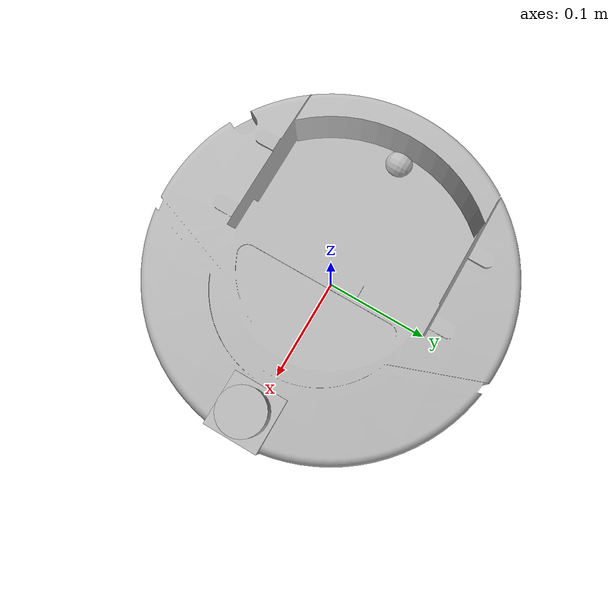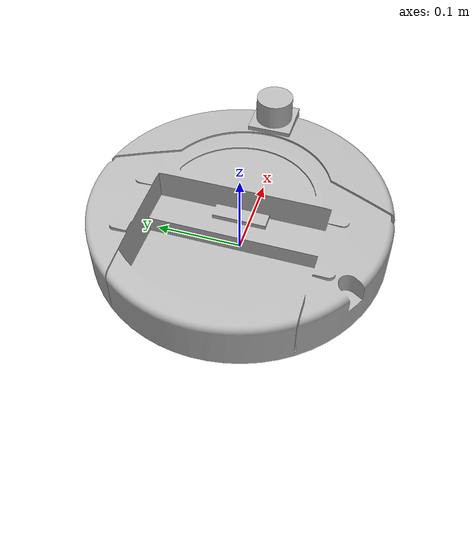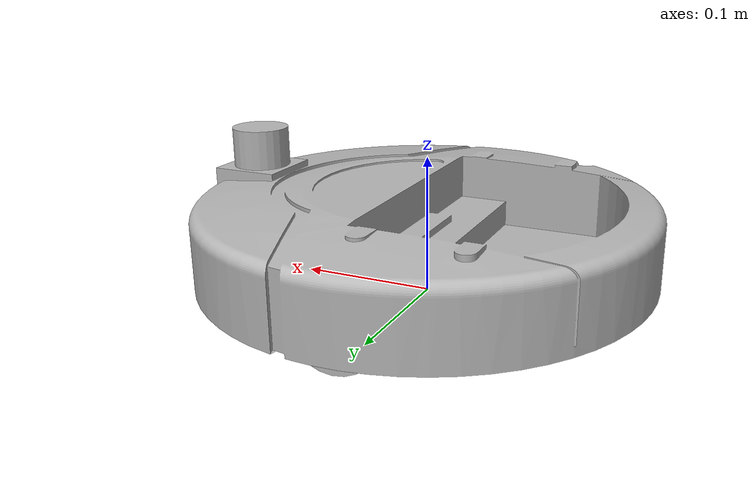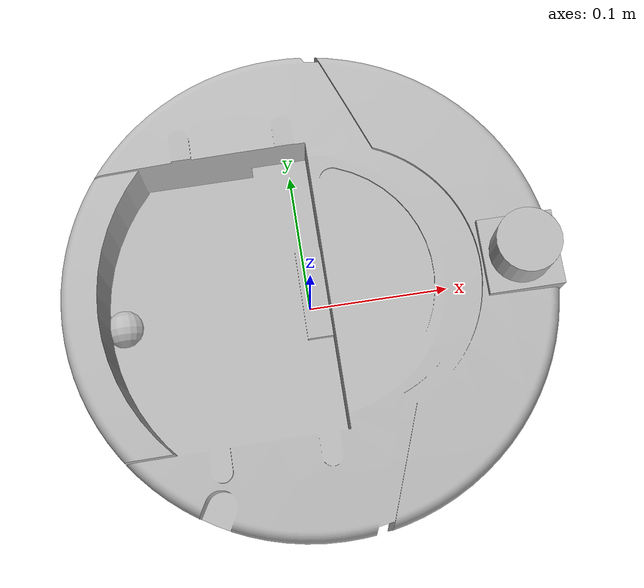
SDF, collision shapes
<?xml version="1.0" ?>
<sdf version="1.5">
  <model name="roombaROS">
    <link name="base">
      <inertial>
        <pose>0.001453 -0.000453 0.029787 0 0 0</pose>
        <inertia>
          <ixx>0.058640</ixx>
          <ixy>0.000124</ixy>
          <ixz>0.000615</ixz>
          <iyy>0.058786</iyy>
          <iyz>0.000014</iyz>
          <izz>1.532440</izz>
       </inertia>
        <mass>2.234000</mass>
     </inertial>
      <collision name="base_collision">
        <pose>0 0 0.047800 0 0 0</pose>
        <geometry>
          <mesh>
            <uri>model://roombaROS/meshes/create_body.dae</uri>
         </mesh>
       </geometry>
     </collision>
      <visual name="base_visual">
        <pose>0 0 0.047800 0 0 0</pose>
        <geometry>
          <mesh>
            <uri>model://roombaROS/meshes/create_body.dae</uri>
         </mesh>
       </geometry>
     </visual>
      <collision name="front_wheel_collision">
        <pose>0.130000 0 0.017000 0 1.570700 1.570700</pose>
        <geometry>
          <sphere>
            <radius>0.018000</radius>
         </sphere>
       </geometry>
        <surface>
          <friction>
            <ode>
              <mu>0</mu>
              <mu2>0</mu2>
              <fdir1>0 0 0</fdir1>
              <slip1>0</slip1>
              <slip2>0</slip2>
           </ode>
         </friction>
       </surface>
     </collision>
      <visual name="front_wheel_visual">
        <pose>0.130000 0 0.017000 0 1.570700 1.570700</pose>
        <geometry>
          <sphere>
            <radius>0.009000</radius>
         </sphere>
       </geometry>
     </visual>
      <collision name="rear_wheel_collision">
        <pose>-0.13 0 0.017 0 1.5707 1.5707</pose>
        <geometry>
          <sphere>
            <radius>0.015000</radius>
         </sphere>
       </geometry>
        <surface>
          <friction>
            <ode>
              <mu>0</mu>
              <mu2>0</mu2>
              <fdir1>0 0 0</fdir1>
              <slip1>0</slip1>
              <slip2>0</slip2>
           </ode>
         </friction>
       </surface>
     </collision>
      <visual name="rear_wheel_visual">
        <pose>-0.130000 0 0.017000 0 1.570700 1.570700</pose>
        <geometry>
          <sphere>
            <radius>0.007500</radius>
         </sphere>
       </geometry>
     </visual>
      <sensor name="left_cliff_sensor" type="ray">
        <pose>0.070000 0.140000 0.027000 0 1.570790 0</pose>
        <ray>
          <scan>
            <horizontal>
              <samples>1</samples>
              <resolution>1.000000</resolution>
              <min_angle>0</min_angle>
              <max_angle>0</max_angle>
           </horizontal>
         </scan>
          <range>
            <min>0.010000</min>
            <max>0.040000</max>
            <resolution>0.100000</resolution>
         </range>
       </ray>
     </sensor>
      <sensor name="leftfront_cliff_sensor" type="ray">
        <pose>0.150000 0.040000 0.027000 0 1.570790 0</pose>
        <ray>
          <scan>
            <horizontal>
              <samples>1</samples>
              <resolution>1.000000</resolution>
              <min_angle>0</min_angle>
              <max_angle>0</max_angle>
           </horizontal>
         </scan>
          <range>
            <min>0.010000</min>
            <max>0.040000</max>
            <resolution>0.100000</resolution>
         </range>
       </ray>
     </sensor>
      <sensor name="right_cliff_sensor" type="ray">
        <pose>0.070000 -0.140000 0.027000 0 1.570790 0</pose>
        <ray>
          <scan>
            <horizontal>
              <samples>1</samples>
              <resolution>1.000000</resolution>
              <min_angle>0</min_angle>
              <max_angle>0</max_angle>
           </horizontal>
         </scan>
          <range>
            <min>0.010000</min>
            <max>0.040000</max>
            <resolution>0.100000</resolution>
         </range>
       </ray>
     </sensor>
      <sensor name="rightfront_cliff_sensor" type="ray">
        <pose>0.150000 -0.040000 0.027000 0 1.570790 0</pose>
        <ray>
          <scan>
            <horizontal>
              <samples>1</samples>
              <resolution>1.000000</resolution>
              <min_angle>0</min_angle>
              <max_angle>0</max_angle>
           </horizontal>
         </scan>
          <range>
            <min>0.010000</min>
            <max>0.040000</max>
            <resolution>0.100000</resolution>
         </range>
       </ray>
     </sensor>
      <sensor name="wall_sensor" type="ray">
        <pose>0.090000 -0.120000 0.059000 0 0 -1.000000</pose>
        <ray>
          <scan>
            <horizontal>
              <samples>1</samples>
              <resolution>1.000000</resolution>
              <min_angle>0</min_angle>
              <max_angle>0</max_angle>
           </horizontal>
         </scan>
          <range>
            <min>0.016000</min>
            <max>0.040000</max>
            <resolution>0.100000</resolution>
         </range>
       </ray>
     </sensor>
     <sensor name="bumper" type="contact">
        <always_on>true</always_on>
        <update_rate>30.0</update_rate>
        <contact>
          <collision>base_collision</collision>
        </contact>
        <plugin name="gazebo_ros_bumper_controller" filename="libgazebo_ros_bumper.so">
          <bumperTopicName>/mobile_base/events/bumper</bumperTopicName>
          <frameName>bumper_sensor</frameName>
        </plugin>
     </sensor>
   </link>
    <link name="left_wheel">
      <pose>0 0.130000 0.032000 0 0 0</pose>
      <inertial>
        <inertia>
          <ixx>0.001000</ixx>
          <ixy>0</ixy>
          <ixz>0</ixz>
          <iyy>0.001000</iyy>
          <iyz>0</iyz>
          <izz>0.001000</izz>
       </inertia>
        <mass>0.010000</mass>
     </inertial>
      <collision name="collision">
        <pose>0 0 0 0 1.570700 1.570700</pose>
        <geometry>
          <cylinder>
            <radius>0.033000</radius>
            <length>0.023000</length>
         </cylinder>
       </geometry>
        <surface>
          <friction>
            <ode>
              <mu>10</mu>
              <mu2>10</mu2>
              <fdir1>0 0 0</fdir1>
              <slip1>0</slip1>
              <slip2>0</slip2>
           </ode>
         </friction>
       </surface>
     </collision>
      <visual name="visual">
        <pose>0 0 0 0 1.570700 1.570700</pose>
        <geometry>
          <cylinder>
            <radius>0.033000</radius>
            <length>0.023000</length>
         </cylinder>
       </geometry>
     </visual>
   </link>
    <link name="right_wheel">
      <pose>0 -0.130000 0.032000 0 0 0</pose>
      <inertial>
        <inertia>
          <ixx>0.001000</ixx>
          <ixy>0</ixy>
          <ixz>0</ixz>
          <iyy>0.001000</iyy>
          <iyz>0</iyz>
          <izz>0.001000</izz>
       </inertia>
        <mass>0.010000</mass>
     </inertial>
      <collision name="collision">
        <pose>0 0 0 0 1.570700 1.570700</pose>
        <geometry>
          <cylinder>
            <radius>0.033000</radius>
            <length>0.023000</length>
         </cylinder>
       </geometry>
        <surface>
          <friction>
            <ode>
              <mu>10</mu>
              <mu2>10</mu2>
              <fdir1>0 0 0</fdir1>
              <slip1>0</slip1>
              <slip2>0</slip2>
           </ode>
         </friction>
       </surface>
     </collision>
      <visual name="visual">
        <pose>0 0 0 0 1.570700 1.570700</pose>
        <geometry>
          <cylinder>
            <radius>0.033000</radius>
            <length>0.023000</length>
         </cylinder>
       </geometry>
     </visual>
   </link>
   <link name='laser'>
        <pose>0.139000 0.000000 0.0752000 0.000000 0.000000 0.000000</pose>
        <gravity>0</gravity>
        <inertial>
          <mass>0.100000</mass>
          <inertia>
            <ixx>1.000000</ixx>
            <ixy>0.000000</ixy>
            <ixz>0.000000</ixz>
            <iyy>1.000000</iyy>
            <iyz>0.000000</iyz>
            <izz>1.000000</izz>
         </inertia>
       </inertial>
        <visual name='visual'>
          <geometry>
            <mesh>
              <uri>model://hokuyo/meshes/hokuyo.dae</uri>
           </mesh>
         </geometry>
       </visual>
        <collision name='collision-base'>
          <pose>0.000000 0.000000 -0.014500 0.000000 0.000000 0.000000</pose>
          <geometry>
            <box>
              <size>0.050000 0.050000 0.041000</size>
           </box>
         </geometry>
          <max_contacts>10</max_contacts>
       </collision>
        <collision name='collision-top'>
          <pose>0.000000 0.000000 0.020500 0.000000 0.000000 0.000000</pose>
          <geometry>
            <cylinder>
              <radius>0.021000</radius>
              <length>0.029000</length>
           </cylinder>
         </geometry>
          <max_contacts>10</max_contacts>
       </collision>
        <sensor name='laser' type='ray'>
          <ray>
            <scan>
              <horizontal>
                <samples>180</samples>
                <resolution>1.000000</resolution>
                <min_angle>-1.570000</min_angle>
                <max_angle>1.570000</max_angle>
             </horizontal>
           </scan>
            <range>
              <min>0.080000</min>
              <max>10.000000</max>
              <resolution>0.010000</resolution>
           </range>
         </ray>
          <update_rate>20.000000</update_rate>
          <always_on>1</always_on>
          <visualize>1</visualize>
      <plugin name="gazebo_ros_head_hokuyo_controller" filename="libgazebo_ros_laser.so">
        <topicName>/laser/scan</topicName>
        <frameName>hokuyo_link</frameName>
      </plugin>
       </sensor>
        <velocity_decay>
          <linear>0.000000</linear>
          <angular>0.000000</angular>
       </velocity_decay>
        <self_collide>0</self_collide>
        <kinematic>0</kinematic>
   </link>
    <joint name="left_wheel_joint" type="revolute">
      <parent>base</parent>
      <child>left_wheel</child>
      <axis>
        <xyz>0 1 0</xyz>
        <use_parent_model_frame>true</use_parent_model_frame>
     </axis>
   </joint>
    <joint name="right_wheel_joint" type="revolute">
      <parent>base</parent>
      <child>right_wheel</child>
      <axis>
        <xyz>0 1 0</xyz>
        <use_parent_model_frame>true</use_parent_model_frame>
     </axis>
   </joint>
    <joint name='joint_laser' type='fixed'>
        <parent>base</parent>
        <child>laser</child>
        <axis>
          <xyz>0.000000 0.000000 0.000000</xyz>
          <limit>
            <lower>0.000000</lower>
            <upper>0.000000</upper>
         </limit>
       </axis>
   </joint>
   <plugin name="differential_drive_controller" filename="libgazebo_ros_diff_drive.so">
	<alwaysOn>true</alwaysOn>
	<updateRate>10</updateRate>
	<leftJoint>right_wheel_joint</leftJoint>
	<rightJoint>left_wheel_joint</rightJoint>

	<wheelSeparation>0.5380</wheelSeparation>
	<wheelDiameter>0.2410</wheelDiameter>

	<torque>20</torque>
	<commandTopic>/cmd_vel</commandTopic>
	<!-- topic name published in the cpp file -->
	<odometryTopic>/odom</odometryTopic>
	<odometryFrame>/odom</odometryFrame>
	<robotBaseFrame>base</robotBaseFrame>

	<publishWheelTF>true</publishWheelTF>
	<publishWheelJointState>true</publishWheelJointState>
   </plugin>
 </model>
</sdf>
